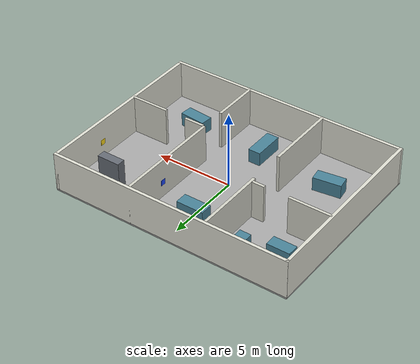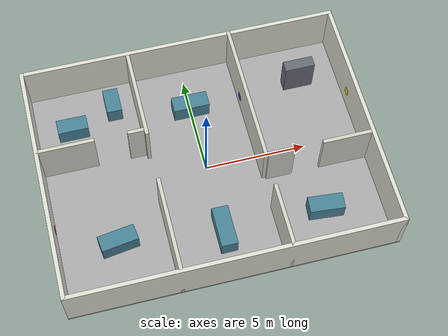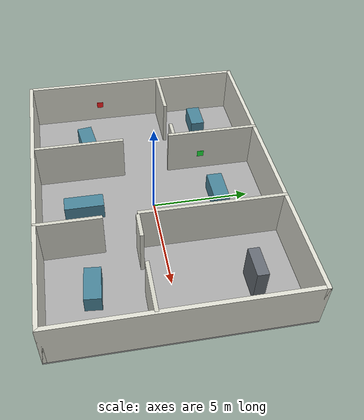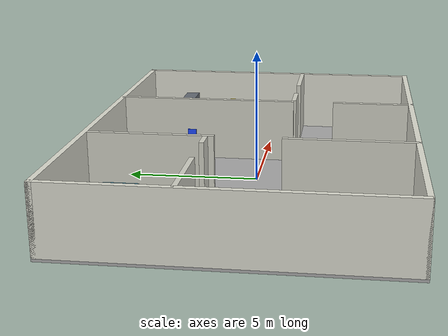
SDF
<?xml version='1.0' encoding='utf-8'?>
<sdf version="1.10">
  <!--Generated from scene.yaml; edit the specification, not this file.-->
  <world name="dev_lab_01">
    <physics name="physics" type="ignored">
      <max_step_size>0.004</max_step_size>
      <real_time_factor>1.0</real_time_factor>
      <real_time_update_rate>250</real_time_update_rate>
    </physics>
    <gravity>0 0 -9.81</gravity>
    <scene>
      <ambient>0.35 0.35 0.38 1</ambient>
      <background>0.72 0.78 0.86 1</background>
      <shadows>true</shadows>
    </scene>
    <plugin filename="gz-sim-physics-system" name="gz::sim::systems::Physics" />
    <plugin filename="gz-sim-user-commands-system" name="gz::sim::systems::UserCommands" />
    <plugin filename="gz-sim-scene-broadcaster-system" name="gz::sim::systems::SceneBroadcaster" />
    <plugin filename="gz-sim-sensors-system" name="gz::sim::systems::Sensors">
      <render_engine>ogre2</render_engine>
    </plugin>
    <plugin filename="gz-sim-imu-system" name="gz::sim::systems::Imu" />
    <plugin filename="gz-sim-contact-system" name="gz::sim::systems::Contact" />
    <light name="sun" type="directional">
      <cast_shadows>true</cast_shadows>
      <pose>0 0 10 0 0 0</pose>
      <diffuse>0.85 0.85 0.85 1</diffuse>
      <specular>0.2 0.2 0.2 1</specular>
      <attenuation>
        <range>1000</range>
        <constant>0.9</constant>
        <linear>0.01</linear>
        <quadratic>0.001</quadratic>
      </attenuation>
      <direction>-0.4 0.2 -0.9</direction>
    </light>
    <model name="floor">
      <static>true</static>
      <pose>0 0 -0.05 0 0 0</pose>
      <link name="body">
        <collision name="collision">
          <geometry>
            <box>
              <size>16 12 0.1</size>
            </box>
          </geometry>
        </collision>
        <visual name="visual">
          <geometry>
            <box>
              <size>16 12 0.1</size>
            </box>
          </geometry>
          <material>
            <ambient>0.58 0.58 0.58 1</ambient>
            <diffuse>0.667 0.667 0.667 1</diffuse>
          </material>
        </visual>
      </link>
    </model>
    <model name="wall_north">
      <static>true</static>
      <pose>0 5.9 1.25 0 0 0</pose>
      <link name="body">
        <collision name="collision">
          <geometry>
            <box>
              <size>16 0.2 2.5</size>
            </box>
          </geometry>
        </collision>
        <visual name="visual">
          <geometry>
            <box>
              <size>16 0.2 2.5</size>
            </box>
          </geometry>
          <material>
            <ambient>0.76 0.76 0.72 1</ambient>
            <diffuse>0.874 0.874 0.828 1</diffuse>
          </material>
        </visual>
      </link>
    </model>
    <model name="wall_south">
      <static>true</static>
      <pose>0 -5.9 1.25 0 0 0</pose>
      <link name="body">
        <collision name="collision">
          <geometry>
            <box>
              <size>16 0.2 2.5</size>
            </box>
          </geometry>
        </collision>
        <visual name="visual">
          <geometry>
            <box>
              <size>16 0.2 2.5</size>
            </box>
          </geometry>
          <material>
            <ambient>0.76 0.76 0.72 1</ambient>
            <diffuse>0.874 0.874 0.828 1</diffuse>
          </material>
        </visual>
      </link>
    </model>
    <model name="wall_west">
      <static>true</static>
      <pose>-7.9 0 1.25 0 0 0</pose>
      <link name="body">
        <collision name="collision">
          <geometry>
            <box>
              <size>0.2 12 2.5</size>
            </box>
          </geometry>
        </collision>
        <visual name="visual">
          <geometry>
            <box>
              <size>0.2 12 2.5</size>
            </box>
          </geometry>
          <material>
            <ambient>0.76 0.76 0.72 1</ambient>
            <diffuse>0.874 0.874 0.828 1</diffuse>
          </material>
        </visual>
      </link>
    </model>
    <model name="wall_east">
      <static>true</static>
      <pose>7.9 0 1.25 0 0 0</pose>
      <link name="body">
        <collision name="collision">
          <geometry>
            <box>
              <size>0.2 12 2.5</size>
            </box>
          </geometry>
        </collision>
        <visual name="visual">
          <geometry>
            <box>
              <size>0.2 12 2.5</size>
            </box>
          </geometry>
          <material>
            <ambient>0.76 0.76 0.72 1</ambient>
            <diffuse>0.874 0.874 0.828 1</diffuse>
          </material>
        </visual>
      </link>
    </model>
    <model name="wall_lab_w_s">
      <static>true</static>
      <pose>-2.6 -3.6 1.25 0 0 0</pose>
      <link name="body">
        <collision name="collision">
          <geometry>
            <box>
              <size>0.18 4.8 2.5</size>
            </box>
          </geometry>
        </collision>
        <visual name="visual">
          <geometry>
            <box>
              <size>0.18 4.8 2.5</size>
            </box>
          </geometry>
          <material>
            <ambient>0.72 0.72 0.68 1</ambient>
            <diffuse>0.828 0.828 0.782 1</diffuse>
          </material>
        </visual>
      </link>
    </model>
    <model name="wall_lab_w_n">
      <static>true</static>
      <pose>-2.6 3.6 1.25 0 0 0</pose>
      <link name="body">
        <collision name="collision">
          <geometry>
            <box>
              <size>0.18 4.8 2.5</size>
            </box>
          </geometry>
        </collision>
        <visual name="visual">
          <geometry>
            <box>
              <size>0.18 4.8 2.5</size>
            </box>
          </geometry>
          <material>
            <ambient>0.72 0.72 0.68 1</ambient>
            <diffuse>0.828 0.828 0.782 1</diffuse>
          </material>
        </visual>
      </link>
    </model>
    <model name="wall_lab_e_s">
      <static>true</static>
      <pose>2.6 -4.4 1.25 0 0 0</pose>
      <link name="body">
        <collision name="collision">
          <geometry>
            <box>
              <size>0.18 3.2 2.5</size>
            </box>
          </geometry>
        </collision>
        <visual name="visual">
          <geometry>
            <box>
              <size>0.18 3.2 2.5</size>
            </box>
          </geometry>
          <material>
            <ambient>0.72 0.72 0.68 1</ambient>
            <diffuse>0.828 0.828 0.782 1</diffuse>
          </material>
        </visual>
      </link>
    </model>
    <model name="wall_lab_e_n">
      <static>true</static>
      <pose>2.6 2.4 1.25 0 0 0</pose>
      <link name="body">
        <collision name="collision">
          <geometry>
            <box>
              <size>0.18 7.2 2.5</size>
            </box>
          </geometry>
        </collision>
        <visual name="visual">
          <geometry>
            <box>
              <size>0.18 7.2 2.5</size>
            </box>
          </geometry>
          <material>
            <ambient>0.72 0.72 0.68 1</ambient>
            <diffuse>0.828 0.828 0.782 1</diffuse>
          </material>
        </visual>
      </link>
    </model>
    <model name="wall_lab_left_n_w">
      <static>true</static>
      <pose>-6.5 1.5 1.25 0 0 0</pose>
      <link name="body">
        <collision name="collision">
          <geometry>
            <box>
              <size>2.8 0.18 2.5</size>
            </box>
          </geometry>
        </collision>
        <visual name="visual">
          <geometry>
            <box>
              <size>2.8 0.18 2.5</size>
            </box>
          </geometry>
          <material>
            <ambient>0.72 0.72 0.68 1</ambient>
            <diffuse>0.828 0.828 0.782 1</diffuse>
          </material>
        </visual>
      </link>
    </model>
    <model name="wall_lab_left_n_e">
      <static>true</static>
      <pose>-3.1 1.5 1.25 0 0 0</pose>
      <link name="body">
        <collision name="collision">
          <geometry>
            <box>
              <size>0.8 0.18 2.5</size>
            </box>
          </geometry>
        </collision>
        <visual name="visual">
          <geometry>
            <box>
              <size>0.8 0.18 2.5</size>
            </box>
          </geometry>
          <material>
            <ambient>0.72 0.72 0.68 1</ambient>
            <diffuse>0.828 0.828 0.782 1</diffuse>
          </material>
        </visual>
      </link>
    </model>
    <model name="wall_lab_right_s_w">
      <static>true</static>
      <pose>3.35 -1.2 1.25 0 0 0</pose>
      <link name="body">
        <collision name="collision">
          <geometry>
            <box>
              <size>1.3 0.18 2.5</size>
            </box>
          </geometry>
        </collision>
        <visual name="visual">
          <geometry>
            <box>
              <size>1.3 0.18 2.5</size>
            </box>
          </geometry>
          <material>
            <ambient>0.72 0.72 0.68 1</ambient>
            <diffuse>0.828 0.828 0.782 1</diffuse>
          </material>
        </visual>
      </link>
    </model>
    <model name="wall_lab_right_s_e">
      <static>true</static>
      <pose>6.65 -1.2 1.25 0 0 0</pose>
      <link name="body">
        <collision name="collision">
          <geometry>
            <box>
              <size>2.5 0.18 2.5</size>
            </box>
          </geometry>
        </collision>
        <visual name="visual">
          <geometry>
            <box>
              <size>2.5 0.18 2.5</size>
            </box>
          </geometry>
          <material>
            <ambient>0.72 0.72 0.68 1</ambient>
            <diffuse>0.828 0.828 0.782 1</diffuse>
          </material>
        </visual>
      </link>
    </model>
    <model name="bench_01">
      <static>true</static>
      <pose>-5 -3 0.45 0 0 0.13962634</pose>
      <link name="body">
        <collision name="collision">
          <geometry>
            <box>
              <size>1.8 0.8 0.9</size>
            </box>
          </geometry>
        </collision>
        <visual name="visual">
          <geometry>
            <box>
              <size>1.8 0.8 0.9</size>
            </box>
          </geometry>
          <material>
            <ambient>0.25 0.45 0.52 1</ambient>
            <diffuse>0.2875 0.5175 0.598 1</diffuse>
          </material>
        </visual>
      </link>
    </model>
    <model name="bench_02">
      <static>true</static>
      <pose>-6 3.5 0.45 0 0 0</pose>
      <link name="body">
        <collision name="collision">
          <geometry>
            <box>
              <size>1.5 0.75 0.9</size>
            </box>
          </geometry>
        </collision>
        <visual name="visual">
          <geometry>
            <box>
              <size>1.5 0.75 0.9</size>
            </box>
          </geometry>
          <material>
            <ambient>0.25 0.45 0.52 1</ambient>
            <diffuse>0.2875 0.5175 0.598 1</diffuse>
          </material>
        </visual>
      </link>
    </model>
    <model name="bench_03">
      <static>true</static>
      <pose>-3.8 4.4 0.45 0 0 1.57079633</pose>
      <link name="body">
        <collision name="collision">
          <geometry>
            <box>
              <size>1.3 0.75 0.9</size>
            </box>
          </geometry>
        </collision>
        <visual name="visual">
          <geometry>
            <box>
              <size>1.3 0.75 0.9</size>
            </box>
          </geometry>
          <material>
            <ambient>0.25 0.45 0.52 1</ambient>
            <diffuse>0.2875 0.5175 0.598 1</diffuse>
          </material>
        </visual>
      </link>
    </model>
    <model name="bench_04">
      <static>true</static>
      <pose>0 -3.6 0.45 0 0 0</pose>
      <link name="body">
        <collision name="collision">
          <geometry>
            <box>
              <size>0.8 2 0.9</size>
            </box>
          </geometry>
        </collision>
        <visual name="visual">
          <geometry>
            <box>
              <size>0.8 2 0.9</size>
            </box>
          </geometry>
          <material>
            <ambient>0.25 0.45 0.52 1</ambient>
            <diffuse>0.2875 0.5175 0.598 1</diffuse>
          </material>
        </visual>
      </link>
    </model>
    <model name="bench_05">
      <static>true</static>
      <pose>0 3.4 0.45 0 0 0</pose>
      <link name="body">
        <collision name="collision">
          <geometry>
            <box>
              <size>1.8 0.8 0.9</size>
            </box>
          </geometry>
        </collision>
        <visual name="visual">
          <geometry>
            <box>
              <size>1.8 0.8 0.9</size>
            </box>
          </geometry>
          <material>
            <ambient>0.25 0.45 0.52 1</ambient>
            <diffuse>0.2875 0.5175 0.598 1</diffuse>
          </material>
        </visual>
      </link>
    </model>
    <model name="bench_06">
      <static>true</static>
      <pose>5 -3.6 0.45 0 0 -0.0872664626</pose>
      <link name="body">
        <collision name="collision">
          <geometry>
            <box>
              <size>1.7 0.8 0.9</size>
            </box>
          </geometry>
        </collision>
        <visual name="visual">
          <geometry>
            <box>
              <size>1.7 0.8 0.9</size>
            </box>
          </geometry>
          <material>
            <ambient>0.25 0.45 0.52 1</ambient>
            <diffuse>0.2875 0.5175 0.598 1</diffuse>
          </material>
        </visual>
      </link>
    </model>
    <model name="cabinet_01">
      <static>true</static>
      <pose>5.7 3.7 0.9 0 0 0</pose>
      <link name="body">
        <collision name="collision">
          <geometry>
            <box>
              <size>1.5 0.55 1.8</size>
            </box>
          </geometry>
        </collision>
        <visual name="visual">
          <geometry>
            <box>
              <size>1.5 0.55 1.8</size>
            </box>
          </geometry>
          <material>
            <ambient>0.35 0.37 0.4 1</ambient>
            <diffuse>0.4025 0.4255 0.46 1</diffuse>
          </material>
        </visual>
      </link>
    </model>
    <model name="target_panel_01">
      <static>true</static>
      <pose>-7.76 -2 1.05 0 0 0</pose>
      <link name="body">
        <visual name="visual">
          <geometry>
            <box>
              <size>0.02 0.35 0.35</size>
            </box>
          </geometry>
          <material>
            <ambient>0.9 0.1 0.1 1</ambient>
            <diffuse>1 0.115 0.115 1</diffuse>
          </material>
        </visual>
      </link>
    </model>
    <model name="target_panel_02">
      <static>true</static>
      <pose>-2.46 3 1.05 0 0 0</pose>
      <link name="body">
        <visual name="visual">
          <geometry>
            <box>
              <size>0.02 0.35 0.35</size>
            </box>
          </geometry>
          <material>
            <ambient>0.1 0.8 0.2 1</ambient>
            <diffuse>0.115 0.92 0.23 1</diffuse>
          </material>
        </visual>
      </link>
    </model>
    <model name="target_panel_03">
      <static>true</static>
      <pose>2.46 3 1.05 0 0 3.14159265</pose>
      <link name="body">
        <visual name="visual">
          <geometry>
            <box>
              <size>0.02 0.35 0.35</size>
            </box>
          </geometry>
          <material>
            <ambient>0.1 0.25 0.9 1</ambient>
            <diffuse>0.115 0.2875 1 1</diffuse>
          </material>
        </visual>
      </link>
    </model>
    <model name="target_panel_04">
      <static>true</static>
      <pose>7.76 2 1.05 0 0 3.14159265</pose>
      <link name="body">
        <visual name="visual">
          <geometry>
            <box>
              <size>0.02 0.35 0.35</size>
            </box>
          </geometry>
          <material>
            <ambient>0.9 0.75 0.1 1</ambient>
            <diffuse>1 0.8625 0.115 1</diffuse>
          </material>
        </visual>
      </link>
    </model>
  </world>
</sdf>
